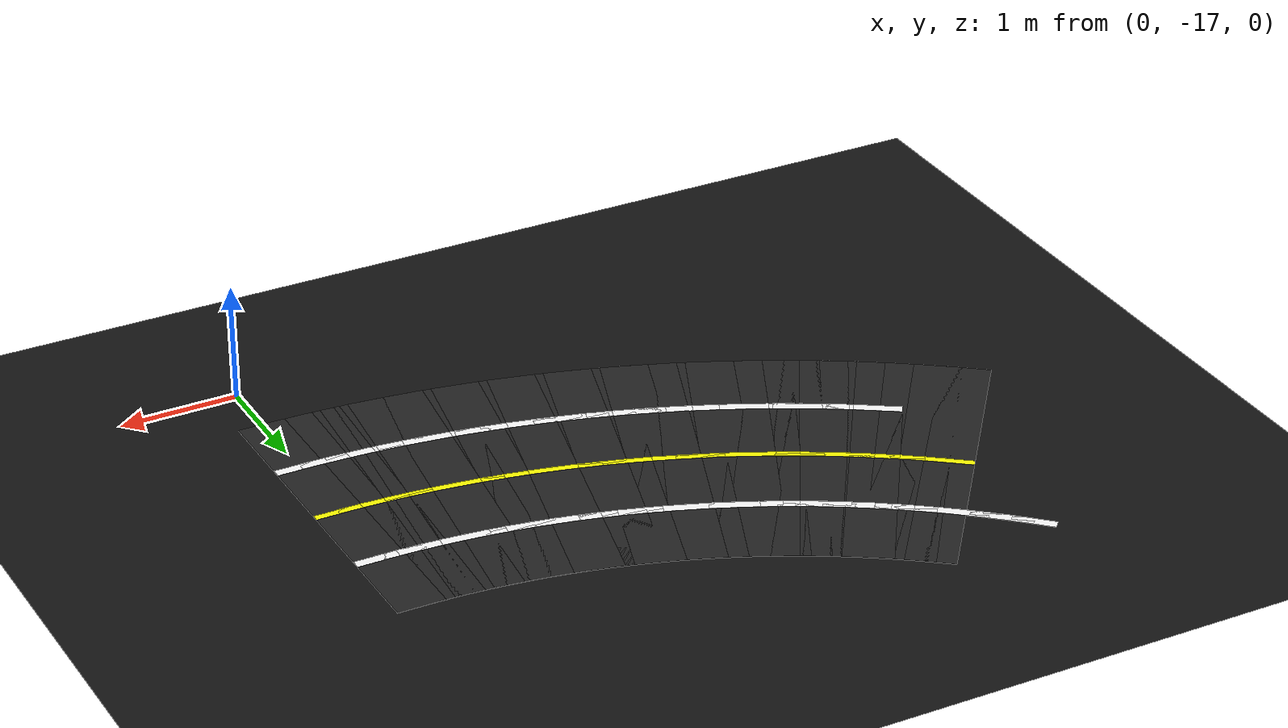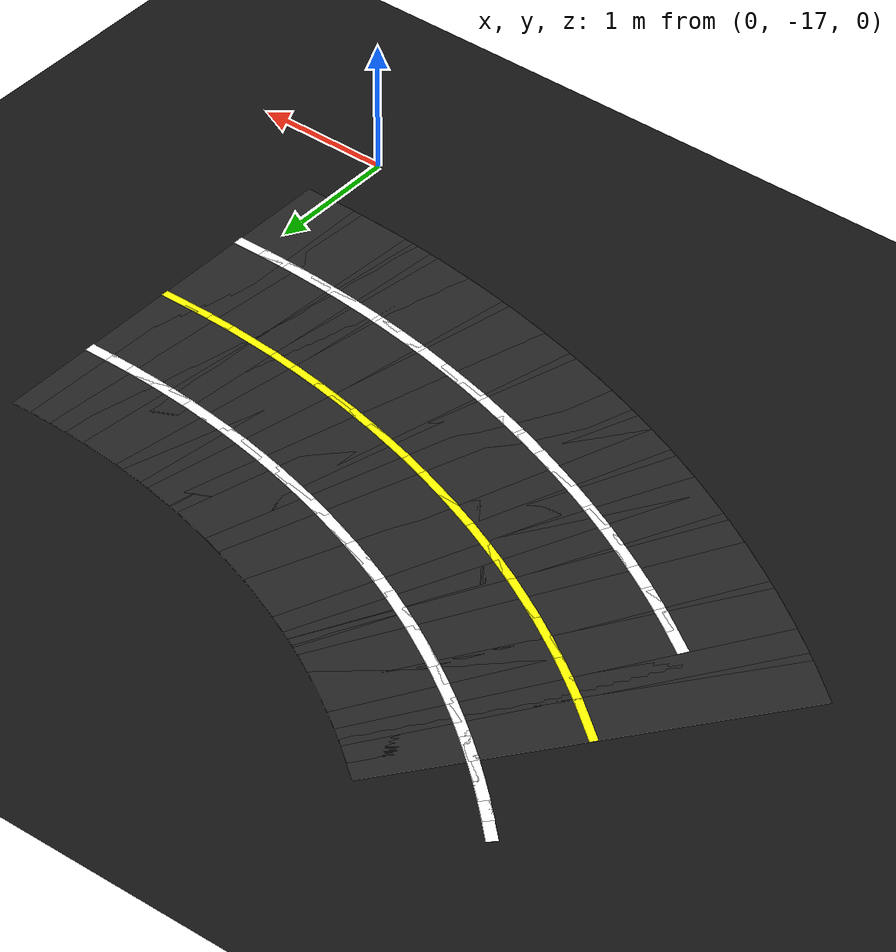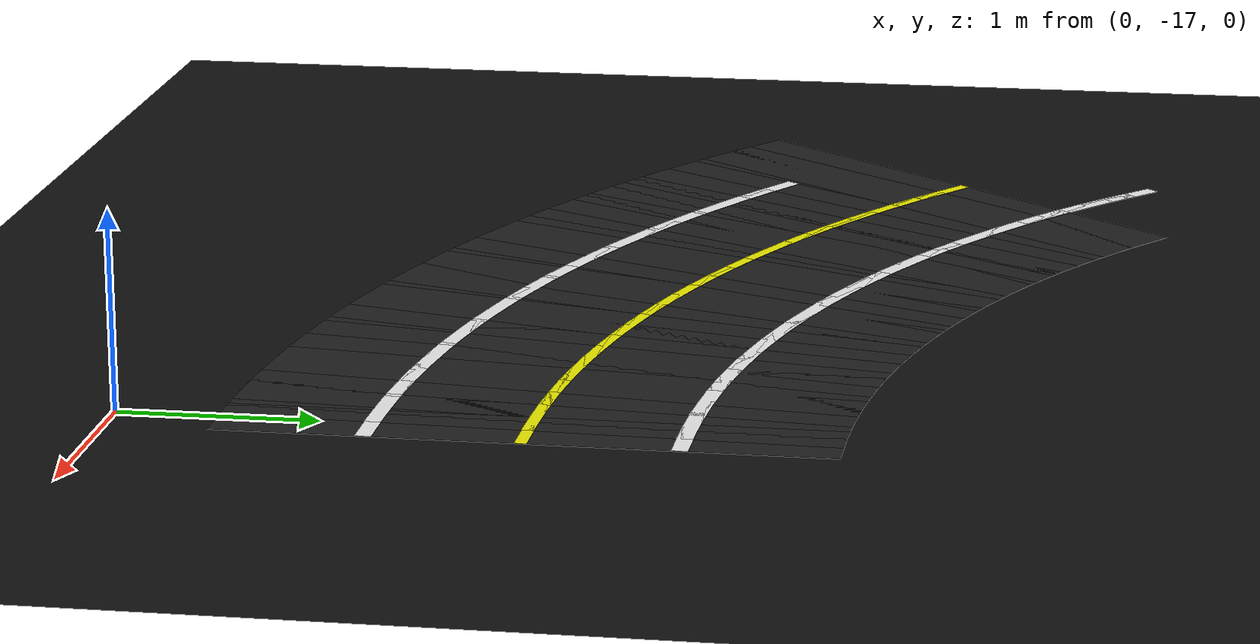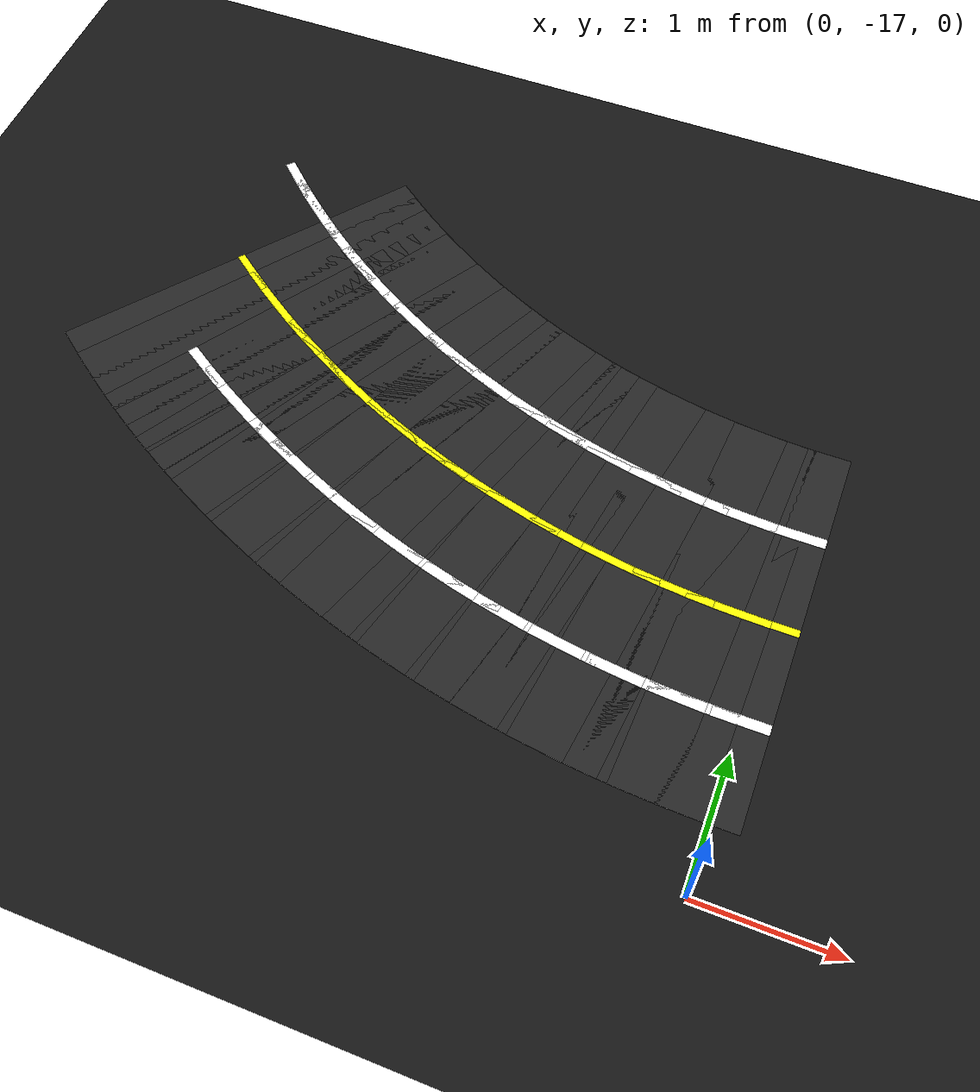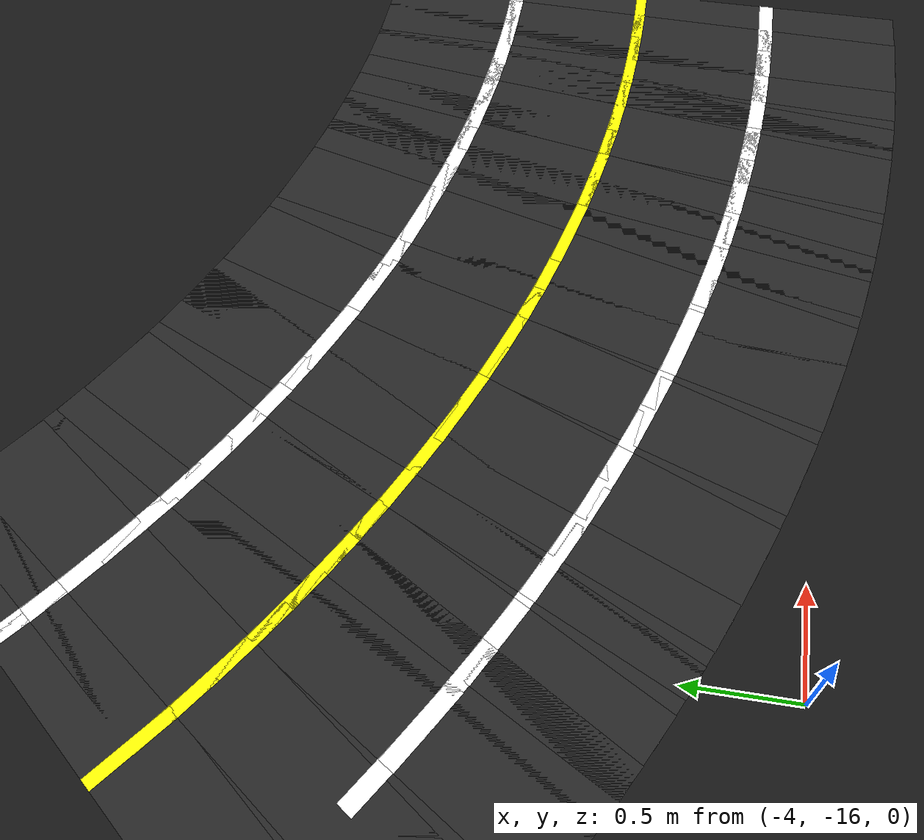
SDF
<sdf version="1.6">
 <world name="figure8_world">
  <model name="ground_plane">
   <static>true</static>
   <link name="link">
    <collision name="collision">
     <geometry><plane><normal>0 0 1</normal><size>120 120</size></plane></geometry>
    </collision>
    <visual name="visual">
     <geometry><plane><normal>0 0 1</normal><size>120 120</size></plane></geometry>
     <material><ambient>0.08 0.08 0.08 1</ambient><diffuse>0.08 0.08 0.08 1</diffuse></material>
    </visual>
   </link>
  </model>
  <model name="seg_00996">
   <static>true</static>
   <pose>0.0000 -15.0000 0.0010 0 0 -3.1416</pose>
   <link name="link">
    <collision name="collision"><geometry><box><size>0.4000 3.0000 0.002</size></box></geometry></collision>
    <visual name="visual">
     <geometry><box><size>0.4000 3.0000 0.002</size></box></geometry>
     <material><ambient>0.14 0.14 0.14 1</ambient><diffuse>0.14 0.14 0.14 1</diffuse></material>
    </visual>
   </link>
  </model>
  <model name="seg_00997">
   <static>true</static>
   <pose>0.0000 -15.7500 0.0030 0 0 -3.1416</pose>
   <link name="link">
    <collision name="collision"><geometry><box><size>0.4000 0.0800 0.002</size></box></geometry></collision>
    <visual name="visual">
     <geometry><box><size>0.4000 0.0800 0.002</size></box></geometry>
     <material><ambient>1 1 1 1</ambient><diffuse>1 1 1 1</diffuse></material>
    </visual>
   </link>
  </model>
  <model name="seg_00998">
   <static>true</static>
   <pose>0.0000 -14.2500 0.0030 0 0 -3.1416</pose>
   <link name="link">
    <collision name="collision"><geometry><box><size>0.4000 0.0800 0.002</size></box></geometry></collision>
    <visual name="visual">
     <geometry><box><size>0.4000 0.0800 0.002</size></box></geometry>
     <material><ambient>1 1 1 1</ambient><diffuse>1 1 1 1</diffuse></material>
    </visual>
   </link>
  </model>
  <model name="seg_00999">
   <static>true</static>
   <pose>0.0000 -15.0000 0.0030 0 0 -3.1416</pose>
   <link name="link">
    <collision name="collision"><geometry><box><size>0.4000 0.0600 0.002</size></box></geometry></collision>
    <visual name="visual">
     <geometry><box><size>0.4000 0.0600 0.002</size></box></geometry>
     <material><ambient>1 1 0 1</ambient><diffuse>1 1 0 1</diffuse></material>
    </visual>
   </link>
  </model>
  <model name="seg_01000">
   <static>true</static>
   <pose>-0.1963 -14.9974 0.0010 0 0 3.1154</pose>
   <link name="link">
    <collision name="collision"><geometry><box><size>0.4000 3.0000 0.002</size></box></geometry></collision>
    <visual name="visual">
     <geometry><box><size>0.4000 3.0000 0.002</size></box></geometry>
     <material><ambient>0.14 0.14 0.14 1</ambient><diffuse>0.14 0.14 0.14 1</diffuse></material>
    </visual>
   </link>
  </model>
  <model name="seg_01001">
   <static>true</static>
   <pose>-0.2160 -15.7472 0.0030 0 0 3.1154</pose>
   <link name="link">
    <collision name="collision"><geometry><box><size>0.4000 0.0800 0.002</size></box></geometry></collision>
    <visual name="visual">
     <geometry><box><size>0.4000 0.0800 0.002</size></box></geometry>
     <material><ambient>1 1 1 1</ambient><diffuse>1 1 1 1</diffuse></material>
    </visual>
   </link>
  </model>
  <model name="seg_01002">
   <static>true</static>
   <pose>-0.1767 -14.2477 0.0030 0 0 3.1154</pose>
   <link name="link">
    <collision name="collision"><geometry><box><size>0.4000 0.0800 0.002</size></box></geometry></collision>
    <visual name="visual">
     <geometry><box><size>0.4000 0.0800 0.002</size></box></geometry>
     <material><ambient>1 1 1 1</ambient><diffuse>1 1 1 1</diffuse></material>
    </visual>
   </link>
  </model>
  <model name="seg_01003">
   <static>true</static>
   <pose>-0.1963 -14.9974 0.0030 0 0 3.1154</pose>
   <link name="link">
    <collision name="collision"><geometry><box><size>0.4000 0.0600 0.002</size></box></geometry></collision>
    <visual name="visual">
     <geometry><box><size>0.4000 0.0600 0.002</size></box></geometry>
     <material><ambient>1 1 0 1</ambient><diffuse>1 1 0 1</diffuse></material>
    </visual>
   </link>
  </model>
  <model name="seg_01004">
   <static>true</static>
   <pose>-0.3925 -14.9897 0.0010 0 0 3.0892</pose>
   <link name="link">
    <collision name="collision"><geometry><box><size>0.4000 3.0000 0.002</size></box></geometry></collision>
    <visual name="visual">
     <geometry><box><size>0.4000 3.0000 0.002</size></box></geometry>
     <material><ambient>0.14 0.14 0.14 1</ambient><diffuse>0.14 0.14 0.14 1</diffuse></material>
    </visual>
   </link>
  </model>
  <model name="seg_01005">
   <static>true</static>
   <pose>-0.4318 -15.7387 0.0030 0 0 3.0892</pose>
   <link name="link">
    <collision name="collision"><geometry><box><size>0.4000 0.0800 0.002</size></box></geometry></collision>
    <visual name="visual">
     <geometry><box><size>0.4000 0.0800 0.002</size></box></geometry>
     <material><ambient>1 1 1 1</ambient><diffuse>1 1 1 1</diffuse></material>
    </visual>
   </link>
  </model>
  <model name="seg_01006">
   <static>true</static>
   <pose>-0.3533 -14.2407 0.0030 0 0 3.0892</pose>
   <link name="link">
    <collision name="collision"><geometry><box><size>0.4000 0.0800 0.002</size></box></geometry></collision>
    <visual name="visual">
     <geometry><box><size>0.4000 0.0800 0.002</size></box></geometry>
     <material><ambient>1 1 1 1</ambient><diffuse>1 1 1 1</diffuse></material>
    </visual>
   </link>
  </model>
  <model name="seg_01007">
   <static>true</static>
   <pose>-0.3925 -14.9897 0.0030 0 0 3.0892</pose>
   <link name="link">
    <collision name="collision"><geometry><box><size>0.4000 0.0600 0.002</size></box></geometry></collision>
    <visual name="visual">
     <geometry><box><size>0.4000 0.0600 0.002</size></box></geometry>
     <material><ambient>1 1 0 1</ambient><diffuse>1 1 0 1</diffuse></material>
    </visual>
   </link>
  </model>
  <model name="seg_01008">
   <static>true</static>
   <pose>-0.5884 -14.9769 0.0010 0 0 3.0631</pose>
   <link name="link">
    <collision name="collision"><geometry><box><size>0.4000 3.0000 0.002</size></box></geometry></collision>
    <visual name="visual">
     <geometry><box><size>0.4000 3.0000 0.002</size></box></geometry>
     <material><ambient>0.14 0.14 0.14 1</ambient><diffuse>0.14 0.14 0.14 1</diffuse></material>
    </visual>
   </link>
  </model>
  <model name="seg_01009">
   <static>true</static>
   <pose>-0.6473 -15.7246 0.0030 0 0 3.0631</pose>
   <link name="link">
    <collision name="collision"><geometry><box><size>0.4000 0.0800 0.002</size></box></geometry></collision>
    <visual name="visual">
     <geometry><box><size>0.4000 0.0800 0.002</size></box></geometry>
     <material><ambient>1 1 1 1</ambient><diffuse>1 1 1 1</diffuse></material>
    </visual>
   </link>
  </model>
  <model name="seg_01010">
   <static>true</static>
   <pose>-0.5296 -14.2292 0.0030 0 0 3.0631</pose>
   <link name="link">
    <collision name="collision"><geometry><box><size>0.4000 0.0800 0.002</size></box></geometry></collision>
    <visual name="visual">
     <geometry><box><size>0.4000 0.0800 0.002</size></box></geometry>
     <material><ambient>1 1 1 1</ambient><diffuse>1 1 1 1</diffuse></material>
    </visual>
   </link>
  </model>
  <model name="seg_01011">
   <static>true</static>
   <pose>-0.5884 -14.9769 0.0030 0 0 3.0631</pose>
   <link name="link">
    <collision name="collision"><geometry><box><size>0.4000 0.0600 0.002</size></box></geometry></collision>
    <visual name="visual">
     <geometry><box><size>0.4000 0.0600 0.002</size></box></geometry>
     <material><ambient>1 1 0 1</ambient><diffuse>1 1 0 1</diffuse></material>
    </visual>
   </link>
  </model>
  <model name="seg_01012">
   <static>true</static>
   <pose>-0.7840 -14.9589 0.0010 0 0 3.0369</pose>
   <link name="link">
    <collision name="collision"><geometry><box><size>0.4000 3.0000 0.002</size></box></geometry></collision>
    <visual name="visual">
     <geometry><box><size>0.4000 3.0000 0.002</size></box></geometry>
     <material><ambient>0.14 0.14 0.14 1</ambient><diffuse>0.14 0.14 0.14 1</diffuse></material>
    </visual>
   </link>
  </model>
  <model name="seg_01013">
   <static>true</static>
   <pose>-0.8624 -15.7048 0.0030 0 0 3.0369</pose>
   <link name="link">
    <collision name="collision"><geometry><box><size>0.4000 0.0800 0.002</size></box></geometry></collision>
    <visual name="visual">
     <geometry><box><size>0.4000 0.0800 0.002</size></box></geometry>
     <material><ambient>1 1 1 1</ambient><diffuse>1 1 1 1</diffuse></material>
    </visual>
   </link>
  </model>
  <model name="seg_01014">
   <static>true</static>
   <pose>-0.7056 -14.2130 0.0030 0 0 3.0369</pose>
   <link name="link">
    <collision name="collision"><geometry><box><size>0.4000 0.0800 0.002</size></box></geometry></collision>
    <visual name="visual">
     <geometry><box><size>0.4000 0.0800 0.002</size></box></geometry>
     <material><ambient>1 1 1 1</ambient><diffuse>1 1 1 1</diffuse></material>
    </visual>
   </link>
  </model>
  <model name="seg_01015">
   <static>true</static>
   <pose>-0.7840 -14.9589 0.0030 0 0 3.0369</pose>
   <link name="link">
    <collision name="collision"><geometry><box><size>0.4000 0.0600 0.002</size></box></geometry></collision>
    <visual name="visual">
     <geometry><box><size>0.4000 0.0600 0.002</size></box></geometry>
     <material><ambient>1 1 0 1</ambient><diffuse>1 1 0 1</diffuse></material>
    </visual>
   </link>
  </model>
  <model name="seg_01016">
   <static>true</static>
   <pose>-0.9789 -14.9358 0.0010 0 0 3.0107</pose>
   <link name="link">
    <collision name="collision"><geometry><box><size>0.4000 3.0000 0.002</size></box></geometry></collision>
    <visual name="visual">
     <geometry><box><size>0.4000 3.0000 0.002</size></box></geometry>
     <material><ambient>0.14 0.14 0.14 1</ambient><diffuse>0.14 0.14 0.14 1</diffuse></material>
    </visual>
   </link>
  </model>
  <model name="seg_01017">
   <static>true</static>
   <pose>-1.0768 -15.6794 0.0030 0 0 3.0107</pose>
   <link name="link">
    <collision name="collision"><geometry><box><size>0.4000 0.0800 0.002</size></box></geometry></collision>
    <visual name="visual">
     <geometry><box><size>0.4000 0.0800 0.002</size></box></geometry>
     <material><ambient>1 1 1 1</ambient><diffuse>1 1 1 1</diffuse></material>
    </visual>
   </link>
  </model>
  <model name="seg_01018">
   <static>true</static>
   <pose>-0.8811 -14.1923 0.0030 0 0 3.0107</pose>
   <link name="link">
    <collision name="collision"><geometry><box><size>0.4000 0.0800 0.002</size></box></geometry></collision>
    <visual name="visual">
     <geometry><box><size>0.4000 0.0800 0.002</size></box></geometry>
     <material><ambient>1 1 1 1</ambient><diffuse>1 1 1 1</diffuse></material>
    </visual>
   </link>
  </model>
  <model name="seg_01019">
   <static>true</static>
   <pose>-0.9789 -14.9358 0.0030 0 0 3.0107</pose>
   <link name="link">
    <collision name="collision"><geometry><box><size>0.4000 0.0600 0.002</size></box></geometry></collision>
    <visual name="visual">
     <geometry><box><size>0.4000 0.0600 0.002</size></box></geometry>
     <material><ambient>1 1 0 1</ambient><diffuse>1 1 0 1</diffuse></material>
    </visual>
   </link>
  </model>
  <model name="seg_01020">
   <static>true</static>
   <pose>-1.1733 -14.9077 0.0010 0 0 2.9845</pose>
   <link name="link">
    <collision name="collision"><geometry><box><size>0.4000 3.0000 0.002</size></box></geometry></collision>
    <visual name="visual">
     <geometry><box><size>0.4000 3.0000 0.002</size></box></geometry>
     <material><ambient>0.14 0.14 0.14 1</ambient><diffuse>0.14 0.14 0.14 1</diffuse></material>
    </visual>
   </link>
  </model>
  <model name="seg_01021">
   <static>true</static>
   <pose>-1.2906 -15.6484 0.0030 0 0 2.9845</pose>
   <link name="link">
    <collision name="collision"><geometry><box><size>0.4000 0.0800 0.002</size></box></geometry></collision>
    <visual name="visual">
     <geometry><box><size>0.4000 0.0800 0.002</size></box></geometry>
     <material><ambient>1 1 1 1</ambient><diffuse>1 1 1 1</diffuse></material>
    </visual>
   </link>
  </model>
  <model name="seg_01022">
   <static>true</static>
   <pose>-1.0559 -14.1669 0.0030 0 0 2.9845</pose>
   <link name="link">
    <collision name="collision"><geometry><box><size>0.4000 0.0800 0.002</size></box></geometry></collision>
    <visual name="visual">
     <geometry><box><size>0.4000 0.0800 0.002</size></box></geometry>
     <material><ambient>1 1 1 1</ambient><diffuse>1 1 1 1</diffuse></material>
    </visual>
   </link>
  </model>
  <model name="seg_01023">
   <static>true</static>
   <pose>-1.1733 -14.9077 0.0030 0 0 2.9845</pose>
   <link name="link">
    <collision name="collision"><geometry><box><size>0.4000 0.0600 0.002</size></box></geometry></collision>
    <visual name="visual">
     <geometry><box><size>0.4000 0.0600 0.002</size></box></geometry>
     <material><ambient>1 1 0 1</ambient><diffuse>1 1 0 1</diffuse></material>
    </visual>
   </link>
  </model>
  <model name="seg_01024">
   <static>true</static>
   <pose>-1.3668 -14.8744 0.0010 0 0 2.9583</pose>
   <link name="link">
    <collision name="collision"><geometry><box><size>0.4000 3.0000 0.002</size></box></geometry></collision>
    <visual name="visual">
     <geometry><box><size>0.4000 3.0000 0.002</size></box></geometry>
     <material><ambient>0.14 0.14 0.14 1</ambient><diffuse>0.14 0.14 0.14 1</diffuse></material>
    </visual>
   </link>
  </model>
  <model name="seg_01025">
   <static>true</static>
   <pose>-1.5034 -15.6119 0.0030 0 0 2.9583</pose>
   <link name="link">
    <collision name="collision"><geometry><box><size>0.4000 0.0800 0.002</size></box></geometry></collision>
    <visual name="visual">
     <geometry><box><size>0.4000 0.0800 0.002</size></box></geometry>
     <material><ambient>1 1 1 1</ambient><diffuse>1 1 1 1</diffuse></material>
    </visual>
   </link>
  </model>
  <model name="seg_01026">
   <static>true</static>
   <pose>-1.2301 -14.1370 0.0030 0 0 2.9583</pose>
   <link name="link">
    <collision name="collision"><geometry><box><size>0.4000 0.0800 0.002</size></box></geometry></collision>
    <visual name="visual">
     <geometry><box><size>0.4000 0.0800 0.002</size></box></geometry>
     <material><ambient>1 1 1 1</ambient><diffuse>1 1 1 1</diffuse></material>
    </visual>
   </link>
  </model>
  <model name="seg_01027">
   <static>true</static>
   <pose>-1.3668 -14.8744 0.0030 0 0 2.9583</pose>
   <link name="link">
    <collision name="collision"><geometry><box><size>0.4000 0.0600 0.002</size></box></geometry></collision>
    <visual name="visual">
     <geometry><box><size>0.4000 0.0600 0.002</size></box></geometry>
     <material><ambient>1 1 0 1</ambient><diffuse>1 1 0 1</diffuse></material>
    </visual>
   </link>
  </model>
  <model name="seg_01028">
   <static>true</static>
   <pose>-1.5593 -14.8361 0.0010 0 0 2.9322</pose>
   <link name="link">
    <collision name="collision"><geometry><box><size>0.4000 3.0000 0.002</size></box></geometry></collision>
    <visual name="visual">
     <geometry><box><size>0.4000 3.0000 0.002</size></box></geometry>
     <material><ambient>0.14 0.14 0.14 1</ambient><diffuse>0.14 0.14 0.14 1</diffuse></material>
    </visual>
   </link>
  </model>
  <model name="seg_01029">
   <static>true</static>
   <pose>-1.7153 -15.5697 0.0030 0 0 2.9322</pose>
   <link name="link">
    <collision name="collision"><geometry><box><size>0.4000 0.0800 0.002</size></box></geometry></collision>
    <visual name="visual">
     <geometry><box><size>0.4000 0.0800 0.002</size></box></geometry>
     <material><ambient>1 1 1 1</ambient><diffuse>1 1 1 1</diffuse></material>
    </visual>
   </link>
  </model>
  <model name="seg_01030">
   <static>true</static>
   <pose>-1.4034 -14.1025 0.0030 0 0 2.9322</pose>
   <link name="link">
    <collision name="collision"><geometry><box><size>0.4000 0.0800 0.002</size></box></geometry></collision>
    <visual name="visual">
     <geometry><box><size>0.4000 0.0800 0.002</size></box></geometry>
     <material><ambient>1 1 1 1</ambient><diffuse>1 1 1 1</diffuse></material>
    </visual>
   </link>
  </model>
  <model name="seg_01031">
   <static>true</static>
   <pose>-1.5593 -14.8361 0.0030 0 0 2.9322</pose>
   <link name="link">
    <collision name="collision"><geometry><box><size>0.4000 0.0600 0.002</size></box></geometry></collision>
    <visual name="visual">
     <geometry><box><size>0.4000 0.0600 0.002</size></box></geometry>
     <material><ambient>1 1 0 1</ambient><diffuse>1 1 0 1</diffuse></material>
    </visual>
   </link>
  </model>
  <model name="seg_01032">
   <static>true</static>
   <pose>-1.7508 -14.7928 0.0010 0 0 2.9060</pose>
   <link name="link">
    <collision name="collision"><geometry><box><size>0.4000 3.0000 0.002</size></box></geometry></collision>
    <visual name="visual">
     <geometry><box><size>0.4000 3.0000 0.002</size></box></geometry>
     <material><ambient>0.14 0.14 0.14 1</ambient><diffuse>0.14 0.14 0.14 1</diffuse></material>
    </visual>
   </link>
  </model>
  <model name="seg_01033">
   <static>true</static>
   <pose>-1.9259 -15.5221 0.0030 0 0 2.9060</pose>
   <link name="link">
    <collision name="collision"><geometry><box><size>0.4000 0.0800 0.002</size></box></geometry></collision>
    <visual name="visual">
     <geometry><box><size>0.4000 0.0800 0.002</size></box></geometry>
     <material><ambient>1 1 1 1</ambient><diffuse>1 1 1 1</diffuse></material>
    </visual>
   </link>
  </model>
  <model name="seg_01034">
   <static>true</static>
   <pose>-1.5758 -14.0635 0.0030 0 0 2.9060</pose>
   <link name="link">
    <collision name="collision"><geometry><box><size>0.4000 0.0800 0.002</size></box></geometry></collision>
    <visual name="visual">
     <geometry><box><size>0.4000 0.0800 0.002</size></box></geometry>
     <material><ambient>1 1 1 1</ambient><diffuse>1 1 1 1</diffuse></material>
    </visual>
   </link>
  </model>
  <model name="seg_01035">
   <static>true</static>
   <pose>-1.7508 -14.7928 0.0030 0 0 2.9060</pose>
   <link name="link">
    <collision name="collision"><geometry><box><size>0.4000 0.0600 0.002</size></box></geometry></collision>
    <visual name="visual">
     <geometry><box><size>0.4000 0.0600 0.002</size></box></geometry>
     <material><ambient>1 1 0 1</ambient><diffuse>1 1 0 1</diffuse></material>
    </visual>
   </link>
  </model>
  <model name="seg_01036">
   <static>true</static>
   <pose>-1.9411 -14.7444 0.0010 0 0 2.8798</pose>
   <link name="link">
    <collision name="collision"><geometry><box><size>0.4000 3.0000 0.002</size></box></geometry></collision>
    <visual name="visual">
     <geometry><box><size>0.4000 3.0000 0.002</size></box></geometry>
     <material><ambient>0.14 0.14 0.14 1</ambient><diffuse>0.14 0.14 0.14 1</diffuse></material>
    </visual>
   </link>
  </model>
  <model name="seg_01037">
   <static>true</static>
   <pose>-2.1353 -15.4689 0.0030 0 0 2.8798</pose>
   <link name="link">
    <collision name="collision"><geometry><box><size>0.4000 0.0800 0.002</size></box></geometry></collision>
    <visual name="visual">
     <geometry><box><size>0.4000 0.0800 0.002</size></box></geometry>
     <material><ambient>1 1 1 1</ambient><diffuse>1 1 1 1</diffuse></material>
    </visual>
   </link>
  </model>
  <model name="seg_01038">
   <static>true</static>
   <pose>-1.7470 -14.0200 0.0030 0 0 2.8798</pose>
   <link name="link">
    <collision name="collision"><geometry><box><size>0.4000 0.0800 0.002</size></box></geometry></collision>
    <visual name="visual">
     <geometry><box><size>0.4000 0.0800 0.002</size></box></geometry>
     <material><ambient>1 1 1 1</ambient><diffuse>1 1 1 1</diffuse></material>
    </visual>
   </link>
  </model>
  <model name="seg_01039">
   <static>true</static>
   <pose>-1.9411 -14.7444 0.0030 0 0 2.8798</pose>
   <link name="link">
    <collision name="collision"><geometry><box><size>0.4000 0.0600 0.002</size></box></geometry></collision>
    <visual name="visual">
     <geometry><box><size>0.4000 0.0600 0.002</size></box></geometry>
     <material><ambient>1 1 0 1</ambient><diffuse>1 1 0 1</diffuse></material>
    </visual>
   </link>
  </model>
  <model name="seg_01040">
   <static>true</static>
   <pose>-2.1301 -14.6911 0.0010 0 0 2.8536</pose>
   <link name="link">
    <collision name="collision"><geometry><box><size>0.4000 3.0000 0.002</size></box></geometry></collision>
    <visual name="visual">
     <geometry><box><size>0.4000 3.0000 0.002</size></box></geometry>
     <material><ambient>0.14 0.14 0.14 1</ambient><diffuse>0.14 0.14 0.14 1</diffuse></material>
    </visual>
   </link>
  </model>
  <model name="seg_01041">
   <static>true</static>
   <pose>-2.3431 -15.4103 0.0030 0 0 2.8536</pose>
   <link name="link">
    <collision name="collision"><geometry><box><size>0.4000 0.0800 0.002</size></box></geometry></collision>
    <visual name="visual">
     <geometry><box><size>0.4000 0.0800 0.002</size></box></geometry>
     <material><ambient>1 1 1 1</ambient><diffuse>1 1 1 1</diffuse></material>
    </visual>
   </link>
  </model>
  <model name="seg_01042">
   <static>true</static>
   <pose>-1.9171 -13.9720 0.0030 0 0 2.8536</pose>
   <link name="link">
    <collision name="collision"><geometry><box><size>0.4000 0.0800 0.002</size></box></geometry></collision>
    <visual name="visual">
     <geometry><box><size>0.4000 0.0800 0.002</size></box></geometry>
     <material><ambient>1 1 1 1</ambient><diffuse>1 1 1 1</diffuse></material>
    </visual>
   </link>
  </model>
  <model name="seg_01043">
   <static>true</static>
   <pose>-2.1301 -14.6911 0.0030 0 0 2.8536</pose>
   <link name="link">
    <collision name="collision"><geometry><box><size>0.4000 0.0600 0.002</size></box></geometry></collision>
    <visual name="visual">
     <geometry><box><size>0.4000 0.0600 0.002</size></box></geometry>
     <material><ambient>1 1 0 1</ambient><diffuse>1 1 0 1</diffuse></material>
    </visual>
   </link>
  </model>
  <model name="seg_01044">
   <static>true</static>
   <pose>-2.3176 -14.6329 0.0010 0 0 2.8274</pose>
   <link name="link">
    <collision name="collision"><geometry><box><size>0.4000 3.0000 0.002</size></box></geometry></collision>
    <visual name="visual">
     <geometry><box><size>0.4000 3.0000 0.002</size></box></geometry>
     <material><ambient>0.14 0.14 0.14 1</ambient><diffuse>0.14 0.14 0.14 1</diffuse></material>
    </visual>
   </link>
  </model>
  <model name="seg_01045">
   <static>true</static>
   <pose>-2.5494 -15.3462 0.0030 0 0 2.8274</pose>
   <link name="link">
    <collision name="collision"><geometry><box><size>0.4000 0.0800 0.002</size></box></geometry></collision>
    <visual name="visual">
     <geometry><box><size>0.4000 0.0800 0.002</size></box></geometry>
     <material><ambient>1 1 1 1</ambient><diffuse>1 1 1 1</diffuse></material>
    </visual>
   </link>
  </model>
  <model name="seg_01046">
   <static>true</static>
   <pose>-2.0859 -13.9196 0.0030 0 0 2.8274</pose>
   <link name="link">
    <collision name="collision"><geometry><box><size>0.4000 0.0800 0.002</size></box></geometry></collision>
    <visual name="visual">
     <geometry><box><size>0.4000 0.0800 0.002</size></box></geometry>
     <material><ambient>1 1 1 1</ambient><diffuse>1 1 1 1</diffuse></material>
    </visual>
   </link>
  </model>
  <model name="seg_01047">
   <static>true</static>
   <pose>-2.3176 -14.6329 0.0030 0 0 2.8274</pose>
   <link name="link">
    <collision name="collision"><geometry><box><size>0.4000 0.0600 0.002</size></box></geometry></collision>
    <visual name="visual">
     <geometry><box><size>0.4000 0.0600 0.002</size></box></geometry>
     <material><ambient>1 1 0 1</ambient><diffuse>1 1 0 1</diffuse></material>
    </visual>
   </link>
  </model>
  <model name="seg_01048">
   <static>true</static>
   <pose>-2.5036 -14.5698 0.0010 0 0 2.8013</pose>
   <link name="link">
    <collision name="collision"><geometry><box><size>0.4000 3.0000 0.002</size></box></geometry></collision>
    <visual name="visual">
     <geometry><box><size>0.4000 3.0000 0.002</size></box></geometry>
     <material><ambient>0.14 0.14 0.14 1</ambient><diffuse>0.14 0.14 0.14 1</diffuse></material>
    </visual>
   </link>
  </model>
  <model name="seg_01049">
   <static>true</static>
   <pose>-2.7539 -15.2768 0.0030 0 0 2.8013</pose>
   <link name="link">
    <collision name="collision"><geometry><box><size>0.4000 0.0800 0.002</size></box></geometry></collision>
    <visual name="visual">
     <geometry><box><size>0.4000 0.0800 0.002</size></box></geometry>
     <material><ambient>1 1 1 1</ambient><diffuse>1 1 1 1</diffuse></material>
    </visual>
   </link>
  </model>
  <model name="seg_01050">
   <static>true</static>
   <pose>-2.2532 -13.8628 0.0030 0 0 2.8013</pose>
   <link name="link">
    <collision name="collision"><geometry><box><size>0.4000 0.0800 0.002</size></box></geometry></collision>
    <visual name="visual">
     <geometry><box><size>0.4000 0.0800 0.002</size></box></geometry>
     <material><ambient>1 1 1 1</ambient><diffuse>1 1 1 1</diffuse></material>
    </visual>
   </link>
  </model>
  <model name="seg_01051">
   <static>true</static>
   <pose>-2.5036 -14.5698 0.0030 0 0 2.8013</pose>
   <link name="link">
    <collision name="collision"><geometry><box><size>0.4000 0.0600 0.002</size></box></geometry></collision>
    <visual name="visual">
     <geometry><box><size>0.4000 0.0600 0.002</size></box></geometry>
     <material><ambient>1 1 0 1</ambient><diffuse>1 1 0 1</diffuse></material>
    </visual>
   </link>
  </model>
  <model name="seg_01052">
   <static>true</static>
   <pose>-2.6878 -14.5019 0.0010 0 0 2.7751</pose>
   <link name="link">
    <collision name="collision"><geometry><box><size>0.4000 3.0000 0.002</size></box></geometry></collision>
    <visual name="visual">
     <geometry><box><size>0.4000 3.0000 0.002</size></box></geometry>
     <material><ambient>0.14 0.14 0.14 1</ambient><diffuse>0.14 0.14 0.14 1</diffuse></material>
    </visual>
   </link>
  </model>
  <model name="seg_01053">
   <static>true</static>
   <pose>-2.9565 -15.2020 0.0030 0 0 2.7751</pose>
   <link name="link">
    <collision name="collision"><geometry><box><size>0.4000 0.0800 0.002</size></box></geometry></collision>
    <visual name="visual">
     <geometry><box><size>0.4000 0.0800 0.002</size></box></geometry>
     <material><ambient>1 1 1 1</ambient><diffuse>1 1 1 1</diffuse></material>
    </visual>
   </link>
  </model>
  <model name="seg_01054">
   <static>true</static>
   <pose>-2.4190 -13.8017 0.0030 0 0 2.7751</pose>
   <link name="link">
    <collision name="collision"><geometry><box><size>0.4000 0.0800 0.002</size></box></geometry></collision>
    <visual name="visual">
     <geometry><box><size>0.4000 0.0800 0.002</size></box></geometry>
     <material><ambient>1 1 1 1</ambient><diffuse>1 1 1 1</diffuse></material>
    </visual>
   </link>
  </model>
  <model name="seg_01055">
   <static>true</static>
   <pose>-2.6878 -14.5019 0.0030 0 0 2.7751</pose>
   <link name="link">
    <collision name="collision"><geometry><box><size>0.4000 0.0600 0.002</size></box></geometry></collision>
    <visual name="visual">
     <geometry><box><size>0.4000 0.0600 0.002</size></box></geometry>
     <material><ambient>1 1 0 1</ambient><diffuse>1 1 0 1</diffuse></material>
    </visual>
   </link>
  </model>
  <model name="seg_01056">
   <static>true</static>
   <pose>-2.8701 -14.4291 0.0010 0 0 2.7489</pose>
   <link name="link">
    <collision name="collision"><geometry><box><size>0.4000 3.0000 0.002</size></box></geometry></collision>
    <visual name="visual">
     <geometry><box><size>0.4000 3.0000 0.002</size></box></geometry>
     <material><ambient>0.14 0.14 0.14 1</ambient><diffuse>0.14 0.14 0.14 1</diffuse></material>
    </visual>
   </link>
  </model>
  <model name="seg_01057">
   <static>true</static>
   <pose>-3.1571 -15.1220 0.0030 0 0 2.7489</pose>
   <link name="link">
    <collision name="collision"><geometry><box><size>0.4000 0.0800 0.002</size></box></geometry></collision>
    <visual name="visual">
     <geometry><box><size>0.4000 0.0800 0.002</size></box></geometry>
     <material><ambient>1 1 1 1</ambient><diffuse>1 1 1 1</diffuse></material>
    </visual>
   </link>
  </model>
  <model name="seg_01058">
   <static>true</static>
   <pose>-2.5831 -13.7362 0.0030 0 0 2.7489</pose>
   <link name="link">
    <collision name="collision"><geometry><box><size>0.4000 0.0800 0.002</size></box></geometry></collision>
    <visual name="visual">
     <geometry><box><size>0.4000 0.0800 0.002</size></box></geometry>
     <material><ambient>1 1 1 1</ambient><diffuse>1 1 1 1</diffuse></material>
    </visual>
   </link>
  </model>
  <model name="seg_01059">
   <static>true</static>
   <pose>-2.8701 -14.4291 0.0030 0 0 2.7489</pose>
   <link name="link">
    <collision name="collision"><geometry><box><size>0.4000 0.0600 0.002</size></box></geometry></collision>
    <visual name="visual">
     <geometry><box><size>0.4000 0.0600 0.002</size></box></geometry>
     <material><ambient>1 1 0 1</ambient><diffuse>1 1 0 1</diffuse></material>
    </visual>
   </link>
  </model>
  <model name="seg_01060">
   <static>true</static>
   <pose>-3.0505 -14.3516 0.0010 0 0 2.7227</pose>
   <link name="link">
    <collision name="collision"><geometry><box><size>0.4000 3.0000 0.002</size></box></geometry></collision>
    <visual name="visual">
     <geometry><box><size>0.4000 3.0000 0.002</size></box></geometry>
     <material><ambient>0.14 0.14 0.14 1</ambient><diffuse>0.14 0.14 0.14 1</diffuse></material>
    </visual>
   </link>
  </model>
  <model name="seg_01061">
   <static>true</static>
   <pose>-3.3556 -15.0368 0.0030 0 0 2.7227</pose>
   <link name="link">
    <collision name="collision"><geometry><box><size>0.4000 0.0800 0.002</size></box></geometry></collision>
    <visual name="visual">
     <geometry><box><size>0.4000 0.0800 0.002</size></box></geometry>
     <material><ambient>1 1 1 1</ambient><diffuse>1 1 1 1</diffuse></material>
    </visual>
   </link>
  </model>
  <model name="seg_01062">
   <static>true</static>
   <pose>-2.7455 -13.6664 0.0030 0 0 2.7227</pose>
   <link name="link">
    <collision name="collision"><geometry><box><size>0.4000 0.0800 0.002</size></box></geometry></collision>
    <visual name="visual">
     <geometry><box><size>0.4000 0.0800 0.002</size></box></geometry>
     <material><ambient>1 1 1 1</ambient><diffuse>1 1 1 1</diffuse></material>
    </visual>
   </link>
  </model>
  <model name="seg_01063">
   <static>true</static>
   <pose>-3.0505 -14.3516 0.0030 0 0 2.7227</pose>
   <link name="link">
    <collision name="collision"><geometry><box><size>0.4000 0.0600 0.002</size></box></geometry></collision>
    <visual name="visual">
     <geometry><box><size>0.4000 0.0600 0.002</size></box></geometry>
     <material><ambient>1 1 0 1</ambient><diffuse>1 1 0 1</diffuse></material>
    </visual>
   </link>
  </model>
  <model name="seg_01064">
   <static>true</static>
   <pose>-3.2288 -14.2694 0.0010 0 0 2.6965</pose>
   <link name="link">
    <collision name="collision"><geometry><box><size>0.4000 3.0000 0.002</size></box></geometry></collision>
    <visual name="visual">
     <geometry><box><size>0.4000 3.0000 0.002</size></box></geometry>
     <material><ambient>0.14 0.14 0.14 1</ambient><diffuse>0.14 0.14 0.14 1</diffuse></material>
    </visual>
   </link>
  </model>
  <model name="seg_01065">
   <static>true</static>
   <pose>-3.5517 -14.9463 0.0030 0 0 2.6965</pose>
   <link name="link">
    <collision name="collision"><geometry><box><size>0.4000 0.0800 0.002</size></box></geometry></collision>
    <visual name="visual">
     <geometry><box><size>0.4000 0.0800 0.002</size></box></geometry>
     <material><ambient>1 1 1 1</ambient><diffuse>1 1 1 1</diffuse></material>
    </visual>
   </link>
  </model>
  <model name="seg_01066">
   <static>true</static>
   <pose>-2.9059 -13.5925 0.0030 0 0 2.6965</pose>
   <link name="link">
    <collision name="collision"><geometry><box><size>0.4000 0.0800 0.002</size></box></geometry></collision>
    <visual name="visual">
     <geometry><box><size>0.4000 0.0800 0.002</size></box></geometry>
     <material><ambient>1 1 1 1</ambient><diffuse>1 1 1 1</diffuse></material>
    </visual>
   </link>
  </model>
  <model name="seg_01067">
   <static>true</static>
   <pose>-3.2288 -14.2694 0.0030 0 0 2.6965</pose>
   <link name="link">
    <collision name="collision"><geometry><box><size>0.4000 0.0600 0.002</size></box></geometry></collision>
    <visual name="visual">
     <geometry><box><size>0.4000 0.0600 0.002</size></box></geometry>
     <material><ambient>1 1 0 1</ambient><diffuse>1 1 0 1</diffuse></material>
    </visual>
   </link>
  </model>
  <model name="seg_01068">
   <static>true</static>
   <pose>-3.4049 -14.1825 0.0010 0 0 2.6704</pose>
   <link name="link">
    <collision name="collision"><geometry><box><size>0.4000 3.0000 0.002</size></box></geometry></collision>
    <visual name="visual">
     <geometry><box><size>0.4000 3.0000 0.002</size></box></geometry>
     <material><ambient>0.14 0.14 0.14 1</ambient><diffuse>0.14 0.14 0.14 1</diffuse></material>
    </visual>
   </link>
  </model>
  <model name="seg_01069">
   <static>true</static>
   <pose>-3.7454 -14.8508 0.0030 0 0 2.6704</pose>
   <link name="link">
    <collision name="collision"><geometry><box><size>0.4000 0.0800 0.002</size></box></geometry></collision>
    <visual name="visual">
     <geometry><box><size>0.4000 0.0800 0.002</size></box></geometry>
     <material><ambient>1 1 1 1</ambient><diffuse>1 1 1 1</diffuse></material>
    </visual>
   </link>
  </model>
  <model name="seg_01070">
   <static>true</static>
   <pose>-3.0644 -13.5143 0.0030 0 0 2.6704</pose>
   <link name="link">
    <collision name="collision"><geometry><box><size>0.4000 0.0800 0.002</size></box></geometry></collision>
    <visual name="visual">
     <geometry><box><size>0.4000 0.0800 0.002</size></box></geometry>
     <material><ambient>1 1 1 1</ambient><diffuse>1 1 1 1</diffuse></material>
    </visual>
   </link>
  </model>
  <model name="seg_01071">
   <static>true</static>
   <pose>-3.4049 -14.1825 0.0030 0 0 2.6704</pose>
   <link name="link">
    <collision name="collision"><geometry><box><size>0.4000 0.0600 0.002</size></box></geometry></collision>
    <visual name="visual">
     <geometry><box><size>0.4000 0.0600 0.002</size></box></geometry>
     <material><ambient>1 1 0 1</ambient><diffuse>1 1 0 1</diffuse></material>
    </visual>
   </link>
  </model>
  <model name="seg_01072">
   <static>true</static>
   <pose>-3.5787 -14.0911 0.0010 0 0 2.6442</pose>
   <link name="link">
    <collision name="collision"><geometry><box><size>0.4000 3.0000 0.002</size></box></geometry></collision>
    <visual name="visual">
     <geometry><box><size>0.4000 3.0000 0.002</size></box></geometry>
     <material><ambient>0.14 0.14 0.14 1</ambient><diffuse>0.14 0.14 0.14 1</diffuse></material>
    </visual>
   </link>
  </model>
  <model name="seg_01073">
   <static>true</static>
   <pose>-3.9366 -14.7502 0.0030 0 0 2.6442</pose>
   <link name="link">
    <collision name="collision"><geometry><box><size>0.4000 0.0800 0.002</size></box></geometry></collision>
    <visual name="visual">
     <geometry><box><size>0.4000 0.0800 0.002</size></box></geometry>
     <material><ambient>1 1 1 1</ambient><diffuse>1 1 1 1</diffuse></material>
    </visual>
   </link>
  </model>
  <model name="seg_01074">
   <static>true</static>
   <pose>-3.2208 -13.4320 0.0030 0 0 2.6442</pose>
   <link name="link">
    <collision name="collision"><geometry><box><size>0.4000 0.0800 0.002</size></box></geometry></collision>
    <visual name="visual">
     <geometry><box><size>0.4000 0.0800 0.002</size></box></geometry>
     <material><ambient>1 1 1 1</ambient><diffuse>1 1 1 1</diffuse></material>
    </visual>
   </link>
  </model>
  <model name="seg_01075">
   <static>true</static>
   <pose>-3.5787 -14.0911 0.0030 0 0 2.6442</pose>
   <link name="link">
    <collision name="collision"><geometry><box><size>0.4000 0.0600 0.002</size></box></geometry></collision>
    <visual name="visual">
     <geometry><box><size>0.4000 0.0600 0.002</size></box></geometry>
     <material><ambient>1 1 0 1</ambient><diffuse>1 1 0 1</diffuse></material>
    </visual>
   </link>
  </model>
  <model name="seg_01076">
   <static>true</static>
   <pose>-3.7500 -13.9952 0.0010 0 0 2.6180</pose>
   <link name="link">
    <collision name="collision"><geometry><box><size>0.4000 3.0000 0.002</size></box></geometry></collision>
    <visual name="visual">
     <geometry><box><size>0.4000 3.0000 0.002</size></box></geometry>
     <material><ambient>0.14 0.14 0.14 1</ambient><diffuse>0.14 0.14 0.14 1</diffuse></material>
    </visual>
   </link>
  </model>
  <model name="seg_01077">
   <static>true</static>
   <pose>-4.1250 -14.6447 0.0030 0 0 2.6180</pose>
   <link name="link">
    <collision name="collision"><geometry><box><size>0.4000 0.0800 0.002</size></box></geometry></collision>
    <visual name="visual">
     <geometry><box><size>0.4000 0.0800 0.002</size></box></geometry>
     <material><ambient>1 1 1 1</ambient><diffuse>1 1 1 1</diffuse></material>
    </visual>
   </link>
  </model>
  <model name="seg_01078">
   <static>true</static>
   <pose>-3.3750 -13.3457 0.0030 0 0 2.6180</pose>
   <link name="link">
    <collision name="collision"><geometry><box><size>0.4000 0.0800 0.002</size></box></geometry></collision>
    <visual name="visual">
     <geometry><box><size>0.4000 0.0800 0.002</size></box></geometry>
     <material><ambient>1 1 1 1</ambient><diffuse>1 1 1 1</diffuse></material>
    </visual>
   </link>
  </model>
  <model name="seg_01079">
   <static>true</static>
   <pose>-3.7500 -13.9952 0.0030 0 0 2.6180</pose>
   <link name="link">
    <collision name="collision"><geometry><box><size>0.4000 0.0600 0.002</size></box></geometry></collision>
    <visual name="visual">
     <geometry><box><size>0.4000 0.0600 0.002</size></box></geometry>
     <material><ambient>1 1 0 1</ambient><diffuse>1 1 0 1</diffuse></material>
    </visual>
   </link>
  </model>
  <model name="seg_01080">
   <static>true</static>
   <pose>-3.9187 -13.8948 0.0010 0 0 2.5918</pose>
   <link name="link">
    <collision name="collision"><geometry><box><size>0.4000 3.0000 0.002</size></box></geometry></collision>
    <visual name="visual">
     <geometry><box><size>0.4000 3.0000 0.002</size></box></geometry>
     <material><ambient>0.14 0.14 0.14 1</ambient><diffuse>0.14 0.14 0.14 1</diffuse></material>
    </visual>
   </link>
  </model>
  <model name="seg_01081">
   <static>true</static>
   <pose>-4.3106 -14.5343 0.0030 0 0 2.5918</pose>
   <link name="link">
    <collision name="collision"><geometry><box><size>0.4000 0.0800 0.002</size></box></geometry></collision>
    <visual name="visual">
     <geometry><box><size>0.4000 0.0800 0.002</size></box></geometry>
     <material><ambient>1 1 1 1</ambient><diffuse>1 1 1 1</diffuse></material>
    </visual>
   </link>
  </model>
  <model name="seg_01082">
   <static>true</static>
   <pose>-3.5269 -13.2553 0.0030 0 0 2.5918</pose>
   <link name="link">
    <collision name="collision"><geometry><box><size>0.4000 0.0800 0.002</size></box></geometry></collision>
    <visual name="visual">
     <geometry><box><size>0.4000 0.0800 0.002</size></box></geometry>
     <material><ambient>1 1 1 1</ambient><diffuse>1 1 1 1</diffuse></material>
    </visual>
   </link>
  </model>
  <model name="seg_01083">
   <static>true</static>
   <pose>-3.9187 -13.8948 0.0030 0 0 2.5918</pose>
   <link name="link">
    <collision name="collision"><geometry><box><size>0.4000 0.0600 0.002</size></box></geometry></collision>
    <visual name="visual">
     <geometry><box><size>0.4000 0.0600 0.002</size></box></geometry>
     <material><ambient>1 1 0 1</ambient><diffuse>1 1 0 1</diffuse></material>
    </visual>
   </link>
  </model>
  <model name="seg_01084">
   <static>true</static>
   <pose>-4.0848 -13.7900 0.0010 0 0 2.5656</pose>
   <link name="link">
    <collision name="collision"><geometry><box><size>0.4000 3.0000 0.002</size></box></geometry></collision>
    <visual name="visual">
     <geometry><box><size>0.4000 3.0000 0.002</size></box></geometry>
     <material><ambient>0.14 0.14 0.14 1</ambient><diffuse>0.14 0.14 0.14 1</diffuse></material>
    </visual>
   </link>
  </model>
  <model name="seg_01085">
   <static>true</static>
   <pose>-4.4933 -14.4190 0.0030 0 0 2.5656</pose>
   <link name="link">
    <collision name="collision"><geometry><box><size>0.4000 0.0800 0.002</size></box></geometry></collision>
    <visual name="visual">
     <geometry><box><size>0.4000 0.0800 0.002</size></box></geometry>
     <material><ambient>1 1 1 1</ambient><diffuse>1 1 1 1</diffuse></material>
    </visual>
   </link>
  </model>
  <model name="seg_01086">
   <static>true</static>
   <pose>-3.6763 -13.1610 0.0030 0 0 2.5656</pose>
   <link name="link">
    <collision name="collision"><geometry><box><size>0.4000 0.0800 0.002</size></box></geometry></collision>
    <visual name="visual">
     <geometry><box><size>0.4000 0.0800 0.002</size></box></geometry>
     <material><ambient>1 1 1 1</ambient><diffuse>1 1 1 1</diffuse></material>
    </visual>
   </link>
  </model>
  <model name="seg_01087">
   <static>true</static>
   <pose>-4.0848 -13.7900 0.0030 0 0 2.5656</pose>
   <link name="link">
    <collision name="collision"><geometry><box><size>0.4000 0.0600 0.002</size></box></geometry></collision>
    <visual name="visual">
     <geometry><box><size>0.4000 0.0600 0.002</size></box></geometry>
     <material><ambient>1 1 0 1</ambient><diffuse>1 1 0 1</diffuse></material>
    </visual>
   </link>
  </model>
  <model name="seg_01088">
   <static>true</static>
   <pose>-4.2480 -13.6809 0.0010 0 0 2.5395</pose>
   <link name="link">
    <collision name="collision"><geometry><box><size>0.4000 3.0000 0.002</size></box></geometry></collision>
    <visual name="visual">
     <geometry><box><size>0.4000 3.0000 0.002</size></box></geometry>
     <material><ambient>0.14 0.14 0.14 1</ambient><diffuse>0.14 0.14 0.14 1</diffuse></material>
    </visual>
   </link>
  </model>
  <model name="seg_01090">
   <static>true</static>
   <pose>-3.8232 -13.0629 0.0030 0 0 2.5395</pose>
   <link name="link">
    <collision name="collision"><geometry><box><size>0.4000 0.0800 0.002</size></box></geometry></collision>
    <visual name="visual">
     <geometry><box><size>0.4000 0.0800 0.002</size></box></geometry>
     <material><ambient>1 1 1 1</ambient><diffuse>1 1 1 1</diffuse></material>
    </visual>
   </link>
  </model>
  <model name="seg_01091">
   <static>true</static>
   <pose>-4.2480 -13.6809 0.0030 0 0 2.5395</pose>
   <link name="link">
    <collision name="collision"><geometry><box><size>0.4000 0.0600 0.002</size></box></geometry></collision>
    <visual name="visual">
     <geometry><box><size>0.4000 0.0600 0.002</size></box></geometry>
     <material><ambient>1 1 0 1</ambient><diffuse>1 1 0 1</diffuse></material>
    </visual>
   </link>
  </model>
  <model name="seg_01092">
   <static>true</static>
   <pose>-4.4084 -13.5676 0.0010 0 0 2.5133</pose>
   <link name="link">
    <collision name="collision"><geometry><box><size>0.4000 3.0000 0.002</size></box></geometry></collision>
    <visual name="visual">
     <geometry><box><size>0.4000 3.0000 0.002</size></box></geometry>
     <material><ambient>0.14 0.14 0.14 1</ambient><diffuse>0.14 0.14 0.14 1</diffuse></material>
    </visual>
   </link>
  </model>
  <model name="seg_01094">
   <static>true</static>
   <pose>-3.9676 -12.9609 0.0030 0 0 2.5133</pose>
   <link name="link">
    <collision name="collision"><geometry><box><size>0.4000 0.0800 0.002</size></box></geometry></collision>
    <visual name="visual">
     <geometry><box><size>0.4000 0.0800 0.002</size></box></geometry>
     <material><ambient>1 1 1 1</ambient><diffuse>1 1 1 1</diffuse></material>
    </visual>
   </link>
  </model>
  <model name="seg_01095">
   <static>true</static>
   <pose>-4.4084 -13.5676 0.0030 0 0 2.5133</pose>
   <link name="link">
    <collision name="collision"><geometry><box><size>0.4000 0.0600 0.002</size></box></geometry></collision>
    <visual name="visual">
     <geometry><box><size>0.4000 0.0600 0.002</size></box></geometry>
     <material><ambient>1 1 0 1</ambient><diffuse>1 1 0 1</diffuse></material>
    </visual>
   </link>
  </model>
  <model name="seg_01096">
   <static>true</static>
   <pose>-4.5657 -13.4502 0.0010 0 0 2.4871</pose>
   <link name="link">
    <collision name="collision"><geometry><box><size>0.4000 3.0000 0.002</size></box></geometry></collision>
    <visual name="visual">
     <geometry><box><size>0.4000 3.0000 0.002</size></box></geometry>
     <material><ambient>0.14 0.14 0.14 1</ambient><diffuse>0.14 0.14 0.14 1</diffuse></material>
    </visual>
   </link>
  </model>
  <model name="seg_01098">
   <static>true</static>
   <pose>-4.1091 -12.8551 0.0030 0 0 2.4871</pose>
   <link name="link">
    <collision name="collision"><geometry><box><size>0.4000 0.0800 0.002</size></box></geometry></collision>
    <visual name="visual">
     <geometry><box><size>0.4000 0.0800 0.002</size></box></geometry>
     <material><ambient>1 1 1 1</ambient><diffuse>1 1 1 1</diffuse></material>
    </visual>
   </link>
  </model>
  <model name="seg_01099">
   <static>true</static>
   <pose>-4.5657 -13.4502 0.0030 0 0 2.4871</pose>
   <link name="link">
    <collision name="collision"><geometry><box><size>0.4000 0.0600 0.002</size></box></geometry></collision>
    <visual name="visual">
     <geometry><box><size>0.4000 0.0600 0.002</size></box></geometry>
     <material><ambient>1 1 0 1</ambient><diffuse>1 1 0 1</diffuse></material>
    </visual>
   </link>
  </model>
  <model name="seg_01102">
   <static>true</static>
   <pose>-4.2479 -12.7457 0.0030 0 0 2.4609</pose>
   <link name="link">
    <collision name="collision"><geometry><box><size>0.4000 0.0800 0.002</size></box></geometry></collision>
    <visual name="visual">
     <geometry><box><size>0.4000 0.0800 0.002</size></box></geometry>
     <material><ambient>1 1 1 1</ambient><diffuse>1 1 1 1</diffuse></material>
    </visual>
   </link>
  </model>
  <model name="seg_01106">
   <static>true</static>
   <pose>-4.3838 -12.6327 0.0030 0 0 2.4347</pose>
   <link name="link">
    <collision name="collision"><geometry><box><size>0.4000 0.0800 0.002</size></box></geometry></collision>
    <visual name="visual">
     <geometry><box><size>0.4000 0.0800 0.002</size></box></geometry>
     <material><ambient>1 1 1 1</ambient><diffuse>1 1 1 1</diffuse></material>
    </visual>
   </link>
  </model>
  <model name="seg_01110">
   <static>true</static>
   <pose>-4.5166 -12.5162 0.0030 0 0 2.4086</pose>
   <link name="link">
    <collision name="collision"><geometry><box><size>0.4000 0.0800 0.002</size></box></geometry></collision>
    <visual name="visual">
     <geometry><box><size>0.4000 0.0800 0.002</size></box></geometry>
     <material><ambient>1 1 1 1</ambient><diffuse>1 1 1 1</diffuse></material>
    </visual>
   </link>
  </model>
  <model name="seg_01114">
   <static>true</static>
   <pose>-4.6464 -12.3963 0.0030 0 0 2.3824</pose>
   <link name="link">
    <collision name="collision"><geometry><box><size>0.4000 0.0800 0.002</size></box></geometry></collision>
    <visual name="visual">
     <geometry><box><size>0.4000 0.0800 0.002</size></box></geometry>
     <material><ambient>1 1 1 1</ambient><diffuse>1 1 1 1</diffuse></material>
    </visual>
   </link>
  </model>
 </world>
</sdf>
